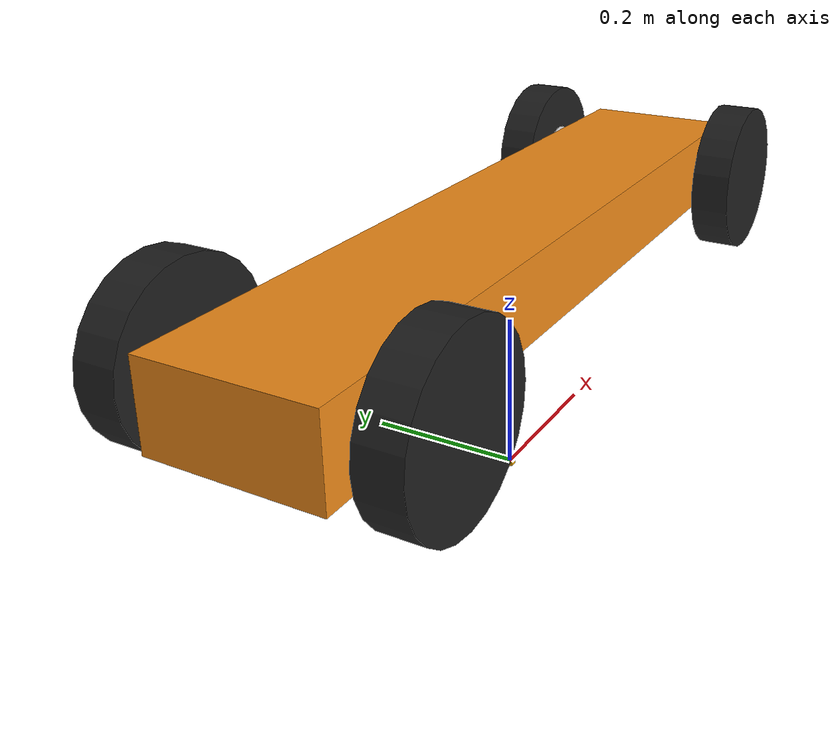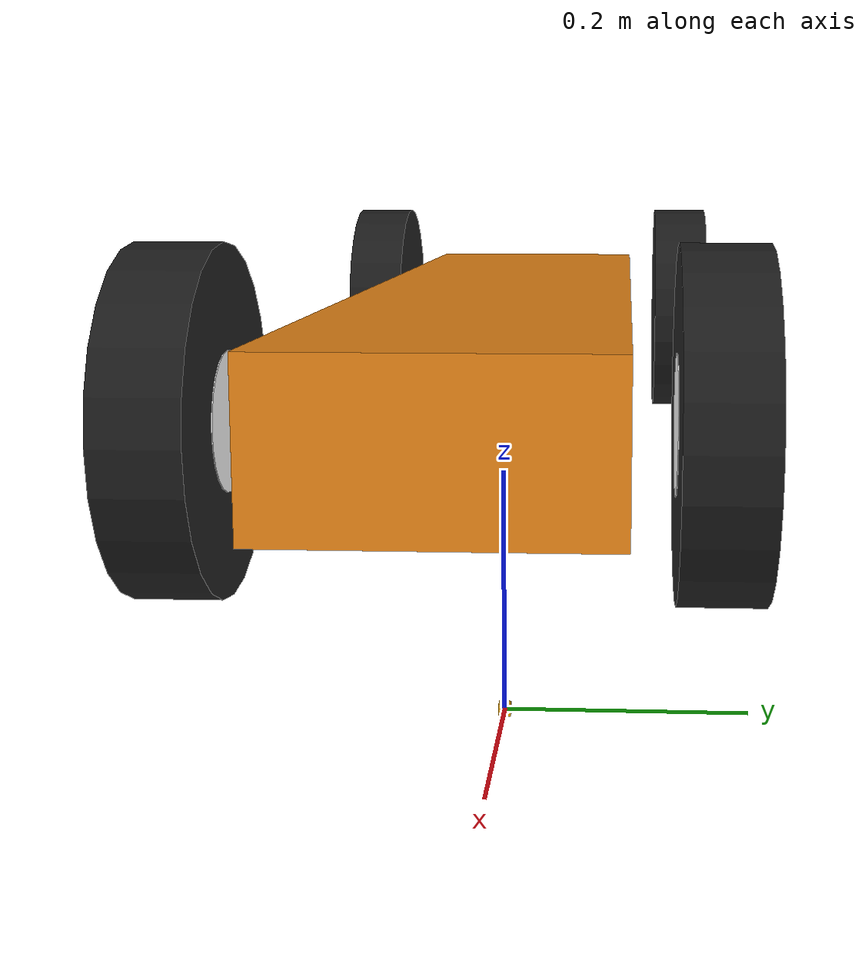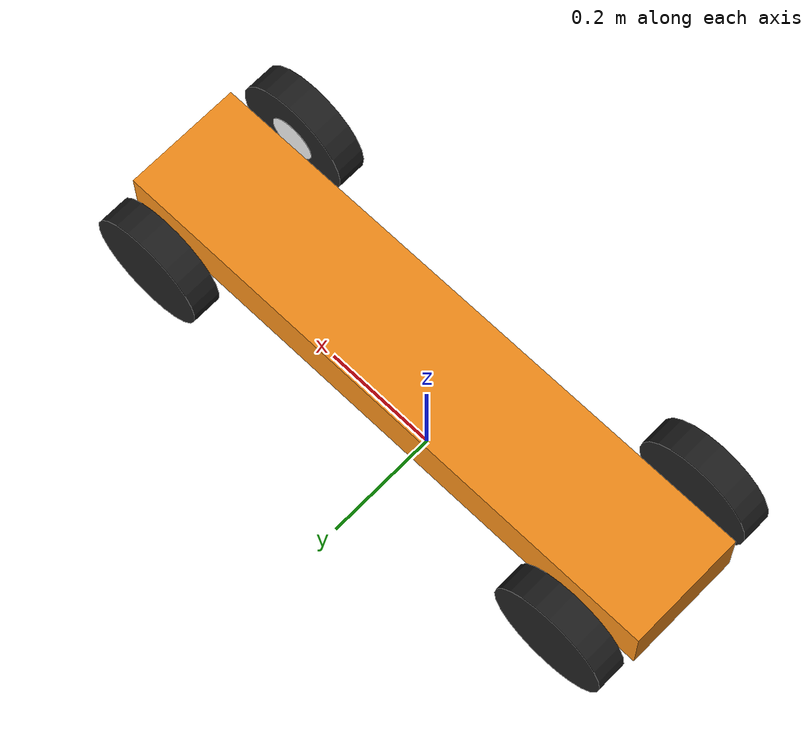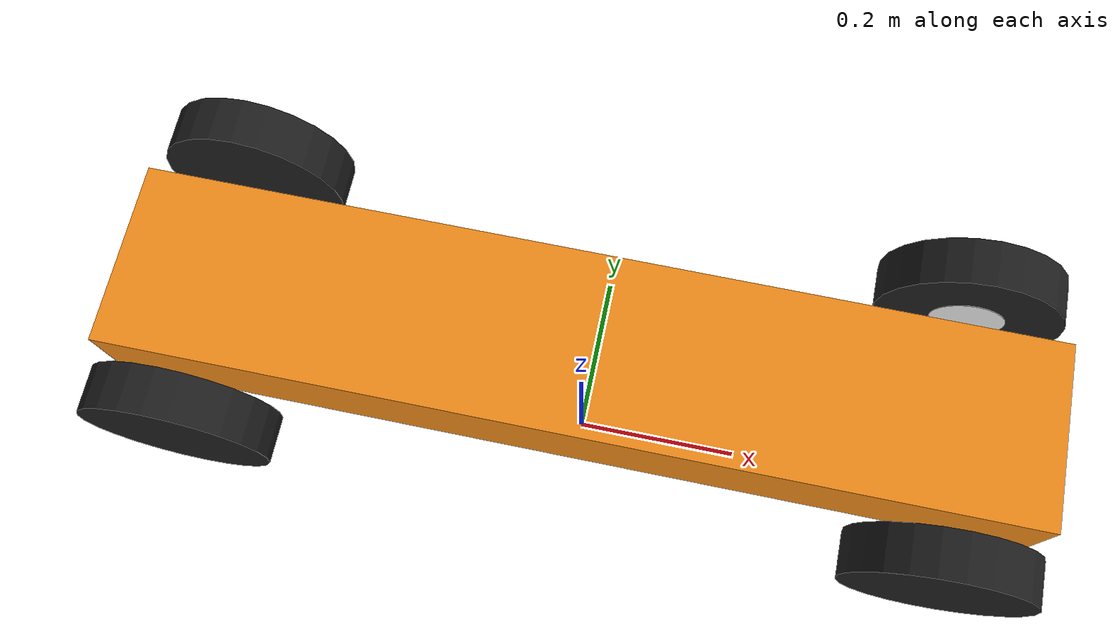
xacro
<?xml version="1.0"?>
<robot name="ackermann_1" xmlns:xacro="http://www.ros.org/wiki/xacro">

    <!-- Base link -->
    <link name="base_link">
        <visual>
            <geometry>
                <box size="0.01 0.01 0.01" />
            </geometry>
        </visual>
    </link>

    <!-- Chassis START-->
    <joint name="base_joint" type="fixed">
        <parent link="base_link" />
        <child link="chassis" />
    </joint>

    <link name="chassis">
        <collision>
            <origin xyz="0 0 0.3" rpy="0 0 0" />
            <geometry>
                <box size="1 0.2 0.1" />
            </geometry>
        </collision>
        <visual>
            <origin xyz="0 0 0.3" rpy="0 0 0" />
            <geometry>
                <box size="1 0.2 0.1" />
            </geometry>
            <material name="orange" />
        </visual>
        <inertial>
            <mass value="1" />
            <origin xyz="0 0 0.3" rpy="0 0 0" />
            <inertia ixx="0.4" ixy="0.1" ixz="0.1" iyy="0.4" iyz="0.1" izz="0.2" />
        </inertial>
    </link>

    <gazebo reference="chassis">
        <!--Stiffness -->
        <kp>1000000.0</kp>
        <!--Dampening-->
        <kd>0.1</kd>
        <dampingFactor>0</dampingFactor>
        <material>Gazebo/White</material>
        <selfCollide>true</selfCollide>
        <turnGravityOff>false</turnGravityOff>
        <mu1 value="0.1" />
        <mu2 value="0.1" />
        <fdir1 value="0 0 0" />
    </gazebo>
    <!-- Chassis END -->

    <!-- Right Wheel - Start -->
    <link name="right_wheel">

        <collision>
            <origin xyz="0 0 0" rpy="0 1.5708 1.5708" />
            <geometry>
                <cylinder length="0.05" radius="0.1" />
            </geometry>
        </collision>

        <visual>
            <origin xyz="0 0 0" rpy="0 1.5708 1.5708" />
            <geometry>
                <cylinder length="0.05" radius="0.1" />
            </geometry>
            <material name="black" />
        </visual>

        <inertial>
            <origin xyz="0 0 0" rpy="0 1.5708 1.5708" />
            <mass value="0.2" />
            <cylinder_inertia m="0.2" r="0.3" h="0.1" />
            <inertia ixx="0.4" ixy="0.1" ixz="0.1" iyy="0.4" iyz="0.1" izz="0.2" />
        </inertial>

    </link>
    <gazebo reference="right_wheel">
        <mu1 value="2.0" />
        <mu2 value="2.0" />
        <kp value="10000000.0" />
        <kd value="1.0" />
        <fdir1 value="0 1 0" />
        <material>Gazebo/Blue</material>
    </gazebo>

    <link name="right_wheel_assembly">
        <collision>
            <origin xyz="0 0 0" rpy="0 1.5708 1.5708" />
            <geometry>
                <cylinder length="0.001" radius="0.04" />
            </geometry>
        </collision>

        <visual>
            <origin xyz="0 0 0" rpy="0 1.5708 1.5708" />
            <geometry>
                <cylinder length="0.001" radius="0.04" />
            </geometry>
            <material name="white" />
        </visual>

        <inertial>
            <origin xyz="0 0 0" rpy="0 1.5708 1.5708" />
            <mass value="0.2" />
            <cylinder_inertia m="0.2" r="0.3" h="0.1" />
            <inertia ixx="0.4" ixy="0.1" ixz="0.1" iyy="0.4" iyz="0.1" izz="0.2" />
        </inertial>
    </link>

    <gazebo reference="right_wheel_assembly">
        <mu1 value="2.0" />
        <mu2 value="2.0" />
        <kp value="10000000.0" />
        <kd value="1.0" />
        <fdir1 value="0 1 0" />
        <material>Gazebo/White</material>
    </gazebo>

    <joint name="right_wheel_hinge" type="revolute">
        <parent link="chassis" />
        <child link="right_wheel_assembly" />
        <origin xyz="0.4 0.125 0.3" rpy="0 0 0" />
        <axis xyz="0 0 1" rpy="0 0 0" />
        <limit effort="100" velocity="1" lower="-1" upper="1" />
        <dynamics damping="0.0" friction="0.0" />
    </joint>

    <joint name="right_wheel_rotate" type="continuous">
        <parent link="right_wheel_assembly" />
        <child link="right_wheel" />
        <origin xyz="0.0 0.025 0.0" rpy="0 0 0" />
        <axis xyz="0 1 0" rpy="0 0 0" />
        <limit effort="100" velocity="50" />
        <dynamics damping="0.0" friction="0.0" />
    </joint>

    <transmission name="trans_right_wheel_hing">
        <type>transmission_interface/SimpleTransmission</type>
        <joint name="right_wheel_hinge">
            <hardwareInterface>EffortJointInterface</hardwareInterface>
        </joint>
        <actuator name="motor1">
            <hardwareInterface>EffortJointInterface</hardwareInterface>
            <mechanicalReduction>1</mechanicalReduction>
        </actuator>
    </transmission>

    <transmission name="trans_right_wheel_rotate">
        <type>transmission_interface/SimpleTransmission</type>
        <joint name="right_wheel_rotate">
            <hardwareInterface>EffortJointInterface</hardwareInterface>
        </joint>
        <actuator name="motor_right_wheel_rotate">
            <hardwareInterface>EffortJointInterface</hardwareInterface>
            <mechanicalReduction>1</mechanicalReduction>
        </actuator>
    </transmission>

    <!-- Right Wheel - End -->

    <!-- Left Wheel - Start  -->
    <link name="left_wheel">

        <collision>
            <origin xyz="0 0 0" rpy="0 1.5708 1.5708" />
            <geometry>
                <cylinder length="0.05" radius="0.1" />
            </geometry>
        </collision>

        <visual>
            <origin xyz="0 0 0" rpy="0 1.5708 1.5708" />
            <geometry>
                <cylinder length="0.05" radius="0.1" />
            </geometry>
            <material name="black" />
        </visual>

        <inertial>
            <origin xyz="0 0 0" rpy="0 1.5708 1.5708" />
            <mass value="0.2" />
            <cylinder_inertia m="0.2" r="0.3" h="0.1" />
            <inertia ixx="0.4" ixy="0.1" ixz="0.1" iyy="0.4" iyz="0.1" izz="0.2" />
        </inertial>

    </link>
    <gazebo reference="left_wheel">
        <mu1 value="2.0" />
        <mu2 value="2.0" />
        <kp value="10000000.0" />
        <kd value="1.0" />
        <fdir1 value="0 1 0" />
        <material>Gazebo/Blue</material>
    </gazebo>

    <link name="left_wheel_assembly">
        <collision>
            <origin xyz="0 0 0" rpy="0 1.5708 1.5708" />
            <geometry>
                <cylinder length="0.001" radius="0.04" />
            </geometry>
        </collision>

        <visual>
            <origin xyz="0 0 0" rpy="0 1.5708 1.5708" />
            <geometry>
                <cylinder length="0.001" radius="0.04" />
            </geometry>
            <material name="white" />
        </visual>

        <inertial>
            <origin xyz="0 0 0" rpy="0 1.5708 1.5708" />
            <mass value="0.2" />
            <cylinder_inertia m="0.2" r="0.3" h="0.1" />
            <inertia ixx="0.4" ixy="0.1" ixz="0.1" iyy="0.4" iyz="0.1" izz="0.2" />
        </inertial>
    </link>

    <gazebo reference="left_wheel_assembly">
        <mu1 value="2.0" />
        <mu2 value="2.0" />
        <kp value="10000000.0" />
        <kd value="1.0" />
        <fdir1 value="0 1 0" />
        <material>Gazebo/White</material>
    </gazebo>

    <joint name="left_wheel_hinge" type="revolute">
        <parent link="chassis" />
        <child link="left_wheel_assembly" />
        <origin xyz="0.4 -0.125 0.3" rpy="0 0 0" />
        <axis xyz="0 0 1" rpy="0 0 0" />
        <limit effort="100" velocity="1" lower="-1" upper="1" />
        <dynamics damping="0.0" friction="0.0" />
    </joint>

    <joint name="left_wheel_rotate" type="continuous">
        <parent link="left_wheel_assembly" />
        <child link="left_wheel" />
        <origin xyz="0.0 -0.025 0.0" rpy="0 0 0" />
        <axis xyz="0 1 0" rpy="0 0 0" />
        <limit effort="0" velocity="0" />
        <dynamics damping="0.0" friction="0.0" />
    </joint>

    <transmission name="tran2">
        <type>transmission_interface/SimpleTransmission</type>
        <joint name="left_wheel_hinge">
            <hardwareInterface>EffortJointInterface</hardwareInterface>
        </joint>
        <actuator name="motor2">
            <hardwareInterface>EffortJointInterface</hardwareInterface>
            <mechanicalReduction>1</mechanicalReduction>
        </actuator>
    </transmission>

    <transmission name="trans_left_wheel_rotate">
        <type>transmission_interface/SimpleTransmission</type>
        <joint name="left_wheel_rotate">
            <hardwareInterface>EffortJointInterface</hardwareInterface>
        </joint>
        <actuator name="motor_left_wheel_rotate">
            <hardwareInterface>EffortJointInterface</hardwareInterface>
            <mechanicalReduction>1</mechanicalReduction>
        </actuator>
    </transmission>

    <!-- Left Wheel - End -->

    <!-- Right Rear Wheel Start -->
    <link name="right_wheel_rear">

        <collision>
            <origin xyz="0 0 0" rpy="0 1.5708 1.5708" />
            <geometry>
                <cylinder length="0.05" radius="0.1" />
            </geometry>
        </collision>

        <visual>
            <origin xyz="0 0 0" rpy="0 1.5708 1.5708" />
            <geometry>
                <cylinder length="0.05" radius="0.1" />
            </geometry>
            <material name="black" />
        </visual>

        <inertial>
            <origin xyz="0 0 0" rpy="0 1.5708 1.5708" />
            <mass value="0.2" />
            <cylinder_inertia m="0.2" r="0.3" h="0.1" />
            <inertia ixx="0.4" ixy="0.1" ixz="0.1" iyy="0.4" iyz="0.1" izz="0.2" />
        </inertial>

    </link>

    <joint name="right_wheel_rear_rotate" type="continuous">
        <parent link="chassis" />
        <child link="right_wheel_rear" />
        <origin xyz="-0.4 0.15 0.3" rpy="0 0 0" />
        <axis xyz="0 1 0" rpy="0 0 0" />
        <limit effort="0" velocity="0" />
        <dynamics damping="0.0" friction="0.0" />
    </joint>

    <gazebo reference="right_wheel_rear">
        <mu1 value="2.0" />
        <mu2 value="2.0" />
        <kp value="10000000.0" />
        <kd value="1.0" />
        <fdir1 value="0 1 0" />
        <material>Gazebo/Blue</material>
    </gazebo>

    <!-- Right Rear Wheel End -->

    <!-- Right Rear Wheel Start -->
    <link name="left_wheel_rear">

        <collision>
            <origin xyz="0 0 0" rpy="0 1.5708 1.5708" />
            <geometry>
                <cylinder length="0.05" radius="0.1" />
            </geometry>
        </collision>

        <visual>
            <origin xyz="0 0 0" rpy="0 1.5708 1.5708" />
            <geometry>
                <cylinder length="0.05" radius="0.1" />
            </geometry>
            <material name="black" />
        </visual>

        <inertial>
            <origin xyz="0 0 0" rpy="0 1.5708 1.5708" />
            <mass value="0.2" />
            <cylinder_inertia m="0.2" r="0.3" h="0.1" />
            <inertia ixx="0.4" ixy="0.1" ixz="0.1" iyy="0.4" iyz="0.1" izz="0.2" />
        </inertial>

    </link>

    <joint name="left_wheel_rear_rotate" type="continuous">
        <parent link="chassis" />
        <child link="left_wheel_rear" />
        <origin xyz="-0.4 -0.15 0.3" rpy="0 0 0" />
        <axis xyz="0 1 0" rpy="0 0 0" />
        <limit effort="0" velocity="0" />
        <dynamics damping="0.0" friction="0.0" />
    </joint>

    <gazebo reference="left_wheel_rear">
        <mu1 value="2.0" />
        <mu2 value="2.0" />
        <kp value="10000000.0" />
        <kd value="1.0" />
        <fdir1 value="0 1 0" />
        <material>Gazebo/Blue</material>
    </gazebo>

    <!-- Left Rear Wheel End -->

</robot>
